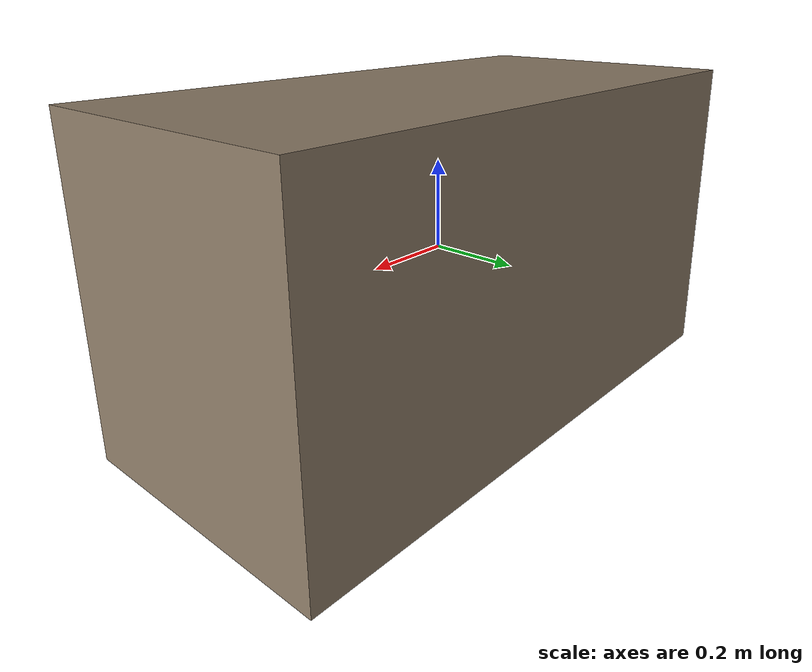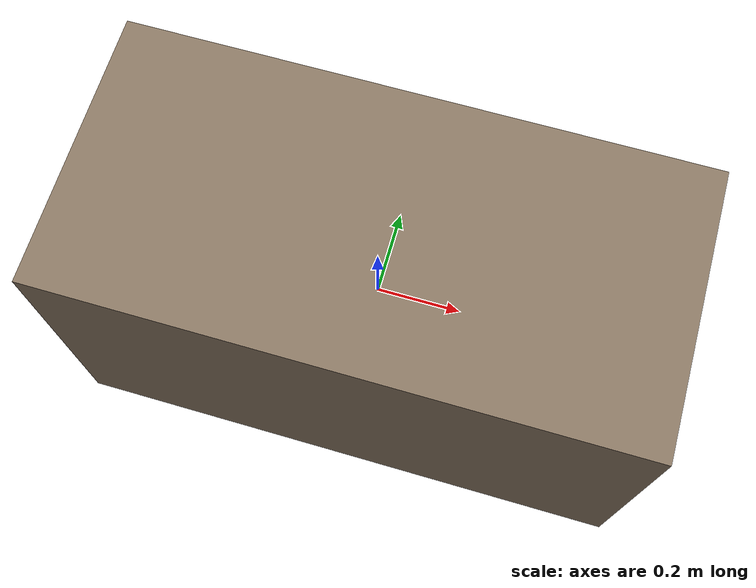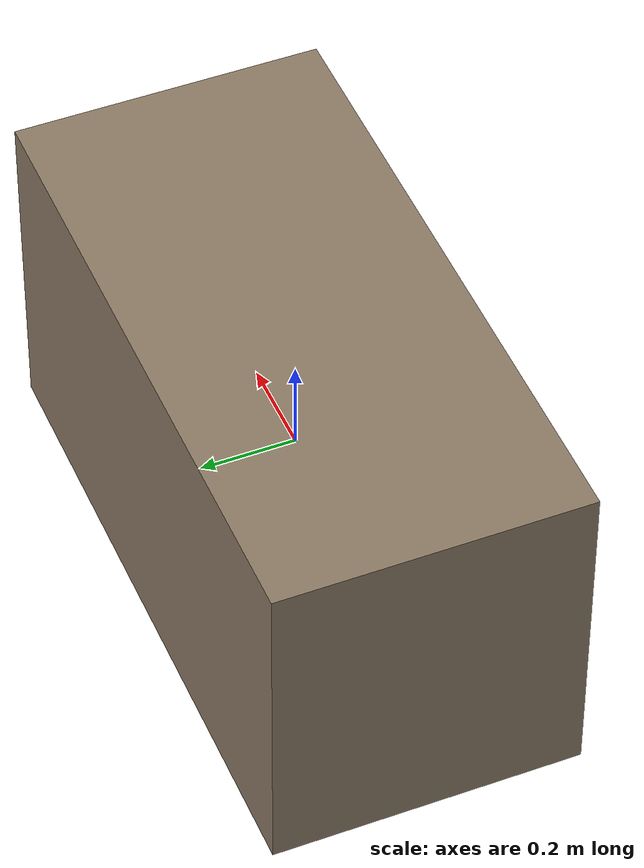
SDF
<?xml version="1.0"?>
<sdf version="1.6">
  <model name="desk">
    <static>true</static>
    <link name="link">
      <collision name="col">
        <geometry>
          <box>
            <size>1.35 0.65 0.73</size>
          </box>
        </geometry>
      </collision>
      <visual name="vis">
        <geometry>
          <box>
            <size>1.35 0.65 0.73</size>
          </box>
        </geometry>
        <material>
          <ambient>0.55 0.48 0.4 1</ambient>
          <diffuse>0.55 0.48 0.4 1</diffuse>
        </material>
      </visual>
    </link>
  </model>
</sdf>
